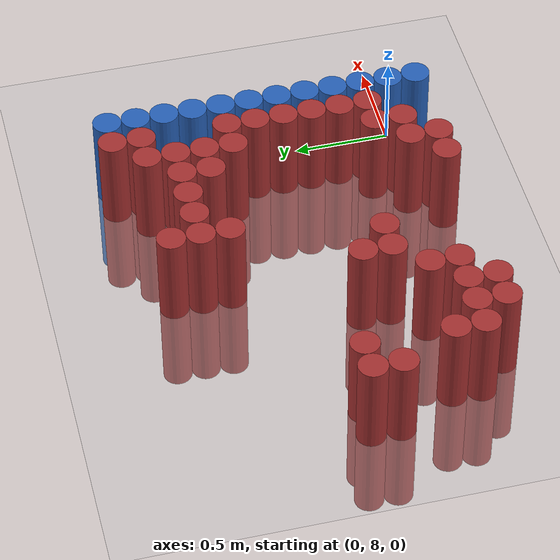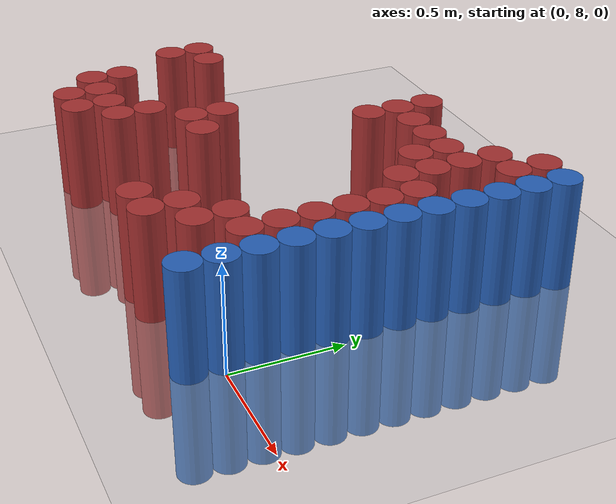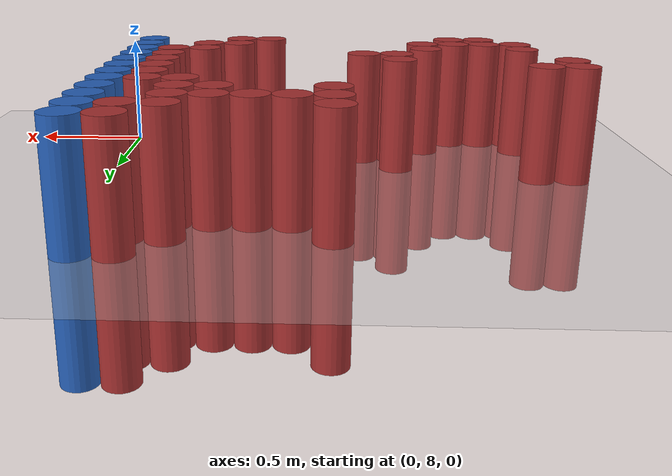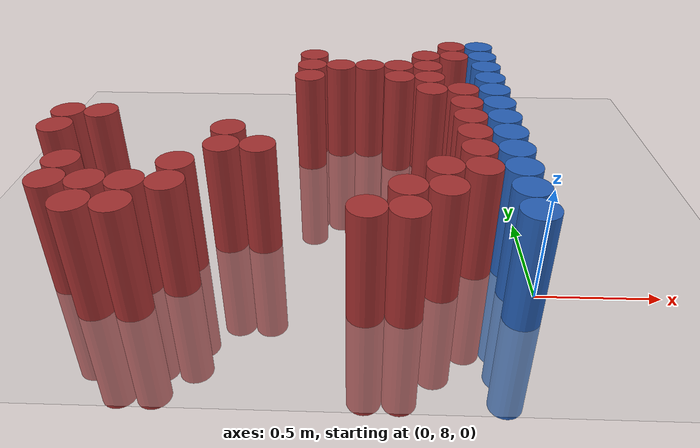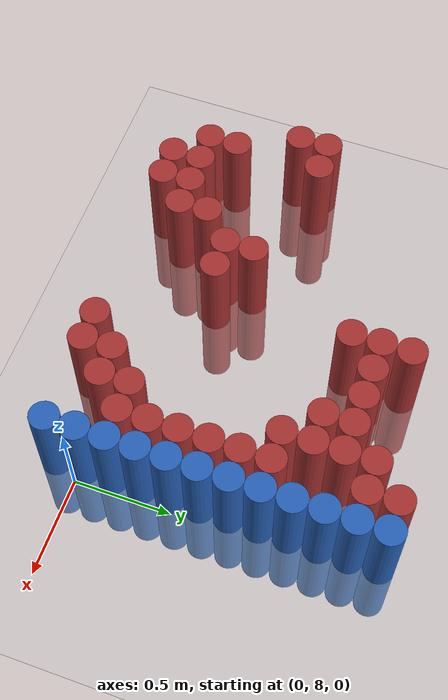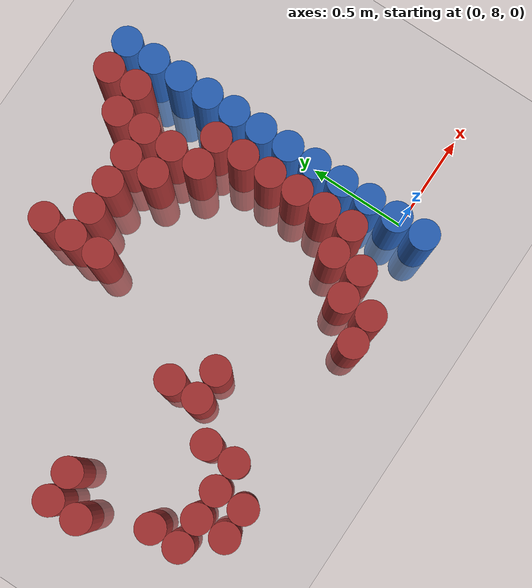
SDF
<sdf version="1.6">
 <world name="default">
  <model name="ground_plane">
   <static>1</static>
   <link name="link">
    <collision name="collision">
     <geometry><plane><normal>0 0 1</normal><size>100 100</size></plane></geometry>
     <surface><friction><ode><mu>100</mu><mu2>50</mu2></ode></friction></surface>
    </collision>
    <visual name="visual">
     <cast_shadows>0</cast_shadows>
     <geometry><plane><normal>0 0 1</normal><size>100 100</size></plane></geometry>
     <material>
      <script><uri>file://media/materials/scripts/gazebo.material</uri><name>Gazebo/Grey</name></script>
     </material>
    </visual>
   </link>
  </model>
  <model name="unit_cylinder_179">
   <static>1</static>
   <pose>-2.025000 8.475000 0.000000 0.000000 0.000000 0.000000</pose>
   <link name="link">
    <inertial>
     <mass>1</mass>
     <inertia><ixx>0.145833</ixx><ixy>0</ixy><ixz>0</ixz><iyy>0.145833</iyy><iyz>0</iyz><izz>0.125</izz></inertia>
    </inertial>
    <collision name="collision">
     <geometry><cylinder><radius>0.075000</radius><length>1</length></cylinder></geometry>
    </collision>
    <visual name="visual">
     <geometry><cylinder><radius>0.075000</radius><length>1</length></cylinder></geometry>
     <material>
      <ambient>0.648000 0.192000 0.192000 1</ambient>
      <diffuse>0.648000 0.192000 0.192000 1</diffuse>
     </material>
     <material>
      <script><name>Gazebo/Grey</name><uri>file://media/materials/scripts/gazebo.material</uri></script>
     </material>
    </visual>
   </link>
  </model>
  <model name="unit_cylinder_180">
   <static>1</static>
   <pose>-2.025000 8.625000 0.000000 0.000000 0.000000 0.000000</pose>
   <link name="link">
    <inertial>
     <mass>1</mass>
     <inertia><ixx>0.145833</ixx><ixy>0</ixy><ixz>0</ixz><iyy>0.145833</iyy><iyz>0</iyz><izz>0.125</izz></inertia>
    </inertial>
    <collision name="collision">
     <geometry><cylinder><radius>0.075000</radius><length>1</length></cylinder></geometry>
    </collision>
    <visual name="visual">
     <geometry><cylinder><radius>0.075000</radius><length>1</length></cylinder></geometry>
     <material>
      <ambient>0.648000 0.192000 0.192000 1</ambient>
      <diffuse>0.648000 0.192000 0.192000 1</diffuse>
     </material>
     <material>
      <script><name>Gazebo/Grey</name><uri>file://media/materials/scripts/gazebo.material</uri></script>
     </material>
    </visual>
   </link>
  </model>
  <model name="unit_cylinder_184">
   <static>1</static>
   <pose>-1.875000 8.025000 0.000000 0.000000 0.000000 0.000000</pose>
   <link name="link">
    <inertial>
     <mass>1</mass>
     <inertia><ixx>0.145833</ixx><ixy>0</ixy><ixz>0</ixz><iyy>0.145833</iyy><iyz>0</iyz><izz>0.125</izz></inertia>
    </inertial>
    <collision name="collision">
     <geometry><cylinder><radius>0.075000</radius><length>1</length></cylinder></geometry>
    </collision>
    <visual name="visual">
     <geometry><cylinder><radius>0.075000</radius><length>1</length></cylinder></geometry>
     <material>
      <ambient>0.648000 0.192000 0.192000 1</ambient>
      <diffuse>0.648000 0.192000 0.192000 1</diffuse>
     </material>
     <material>
      <script><name>Gazebo/Grey</name><uri>file://media/materials/scripts/gazebo.material</uri></script>
     </material>
    </visual>
   </link>
  </model>
  <model name="unit_cylinder_185">
   <static>1</static>
   <pose>-1.875000 8.175000 0.000000 0.000000 0.000000 0.000000</pose>
   <link name="link">
    <inertial>
     <mass>1</mass>
     <inertia><ixx>0.145833</ixx><ixy>0</ixy><ixz>0</ixz><iyy>0.145833</iyy><iyz>0</iyz><izz>0.125</izz></inertia>
    </inertial>
    <collision name="collision">
     <geometry><cylinder><radius>0.075000</radius><length>1</length></cylinder></geometry>
    </collision>
    <visual name="visual">
     <geometry><cylinder><radius>0.075000</radius><length>1</length></cylinder></geometry>
     <material>
      <ambient>0.648000 0.192000 0.192000 1</ambient>
      <diffuse>0.648000 0.192000 0.192000 1</diffuse>
     </material>
     <material>
      <script><name>Gazebo/Grey</name><uri>file://media/materials/scripts/gazebo.material</uri></script>
     </material>
    </visual>
   </link>
  </model>
  <model name="unit_cylinder_186">
   <static>1</static>
   <pose>-1.875000 8.625000 0.000000 0.000000 0.000000 0.000000</pose>
   <link name="link">
    <inertial>
     <mass>1</mass>
     <inertia><ixx>0.145833</ixx><ixy>0</ixy><ixz>0</ixz><iyy>0.145833</iyy><iyz>0</iyz><izz>0.125</izz></inertia>
    </inertial>
    <collision name="collision">
     <geometry><cylinder><radius>0.075000</radius><length>1</length></cylinder></geometry>
    </collision>
    <visual name="visual">
     <geometry><cylinder><radius>0.075000</radius><length>1</length></cylinder></geometry>
     <material>
      <ambient>0.648000 0.192000 0.192000 1</ambient>
      <diffuse>0.648000 0.192000 0.192000 1</diffuse>
     </material>
     <material>
      <script><name>Gazebo/Grey</name><uri>file://media/materials/scripts/gazebo.material</uri></script>
     </material>
    </visual>
   </link>
  </model>
  <model name="unit_cylinder_196">
   <static>1</static>
   <pose>-1.725000 7.875000 0.000000 0.000000 0.000000 0.000000</pose>
   <link name="link">
    <inertial>
     <mass>1</mass>
     <inertia><ixx>0.145833</ixx><ixy>0</ixy><ixz>0</ixz><iyy>0.145833</iyy><iyz>0</iyz><izz>0.125</izz></inertia>
    </inertial>
    <collision name="collision">
     <geometry><cylinder><radius>0.075000</radius><length>1</length></cylinder></geometry>
    </collision>
    <visual name="visual">
     <geometry><cylinder><radius>0.075000</radius><length>1</length></cylinder></geometry>
     <material>
      <ambient>0.648000 0.192000 0.192000 1</ambient>
      <diffuse>0.648000 0.192000 0.192000 1</diffuse>
     </material>
     <material>
      <script><name>Gazebo/Grey</name><uri>file://media/materials/scripts/gazebo.material</uri></script>
     </material>
    </visual>
   </link>
  </model>
  <model name="unit_cylinder_197">
   <static>1</static>
   <pose>-1.725000 8.025000 0.000000 0.000000 0.000000 0.000000</pose>
   <link name="link">
    <inertial>
     <mass>1</mass>
     <inertia><ixx>0.145833</ixx><ixy>0</ixy><ixz>0</ixz><iyy>0.145833</iyy><iyz>0</iyz><izz>0.125</izz></inertia>
    </inertial>
    <collision name="collision">
     <geometry><cylinder><radius>0.075000</radius><length>1</length></cylinder></geometry>
    </collision>
    <visual name="visual">
     <geometry><cylinder><radius>0.075000</radius><length>1</length></cylinder></geometry>
     <material>
      <ambient>0.648000 0.192000 0.192000 1</ambient>
      <diffuse>0.648000 0.192000 0.192000 1</diffuse>
     </material>
     <material>
      <script><name>Gazebo/Grey</name><uri>file://media/materials/scripts/gazebo.material</uri></script>
     </material>
    </visual>
   </link>
  </model>
  <model name="unit_cylinder_204">
   <static>1</static>
   <pose>-1.575000 7.875000 0.000000 0.000000 0.000000 0.000000</pose>
   <link name="link">
    <inertial>
     <mass>1</mass>
     <inertia><ixx>0.145833</ixx><ixy>0</ixy><ixz>0</ixz><iyy>0.145833</iyy><iyz>0</iyz><izz>0.125</izz></inertia>
    </inertial>
    <collision name="collision">
     <geometry><cylinder><radius>0.075000</radius><length>1</length></cylinder></geometry>
    </collision>
    <visual name="visual">
     <geometry><cylinder><radius>0.075000</radius><length>1</length></cylinder></geometry>
     <material>
      <ambient>0.648000 0.192000 0.192000 1</ambient>
      <diffuse>0.648000 0.192000 0.192000 1</diffuse>
     </material>
     <material>
      <script><name>Gazebo/Grey</name><uri>file://media/materials/scripts/gazebo.material</uri></script>
     </material>
    </visual>
   </link>
  </model>
  <model name="unit_cylinder_205">
   <static>1</static>
   <pose>-1.575000 8.025000 0.000000 0.000000 0.000000 0.000000</pose>
   <link name="link">
    <inertial>
     <mass>1</mass>
     <inertia><ixx>0.145833</ixx><ixy>0</ixy><ixz>0</ixz><iyy>0.145833</iyy><iyz>0</iyz><izz>0.125</izz></inertia>
    </inertial>
    <collision name="collision">
     <geometry><cylinder><radius>0.075000</radius><length>1</length></cylinder></geometry>
    </collision>
    <visual name="visual">
     <geometry><cylinder><radius>0.075000</radius><length>1</length></cylinder></geometry>
     <material>
      <ambient>0.648000 0.192000 0.192000 1</ambient>
      <diffuse>0.648000 0.192000 0.192000 1</diffuse>
     </material>
     <material>
      <script><name>Gazebo/Grey</name><uri>file://media/materials/scripts/gazebo.material</uri></script>
     </material>
    </visual>
   </link>
  </model>
  <model name="unit_cylinder_208">
   <static>1</static>
   <pose>-1.425000 8.025000 0.000000 0.000000 0.000000 0.000000</pose>
   <link name="link">
    <inertial>
     <mass>1</mass>
     <inertia><ixx>0.145833</ixx><ixy>0</ixy><ixz>0</ixz><iyy>0.145833</iyy><iyz>0</iyz><izz>0.125</izz></inertia>
    </inertial>
    <collision name="collision">
     <geometry><cylinder><radius>0.075000</radius><length>1</length></cylinder></geometry>
    </collision>
    <visual name="visual">
     <geometry><cylinder><radius>0.075000</radius><length>1</length></cylinder></geometry>
     <material>
      <ambient>0.648000 0.192000 0.192000 1</ambient>
      <diffuse>0.648000 0.192000 0.192000 1</diffuse>
     </material>
     <material>
      <script><name>Gazebo/Grey</name><uri>file://media/materials/scripts/gazebo.material</uri></script>
     </material>
    </visual>
   </link>
  </model>
  <model name="unit_cylinder_209">
   <static>1</static>
   <pose>-1.425000 8.175000 0.000000 0.000000 0.000000 0.000000</pose>
   <link name="link">
    <inertial>
     <mass>1</mass>
     <inertia><ixx>0.145833</ixx><ixy>0</ixy><ixz>0</ixz><iyy>0.145833</iyy><iyz>0</iyz><izz>0.125</izz></inertia>
    </inertial>
    <collision name="collision">
     <geometry><cylinder><radius>0.075000</radius><length>1</length></cylinder></geometry>
    </collision>
    <visual name="visual">
     <geometry><cylinder><radius>0.075000</radius><length>1</length></cylinder></geometry>
     <material>
      <ambient>0.648000 0.192000 0.192000 1</ambient>
      <diffuse>0.648000 0.192000 0.192000 1</diffuse>
     </material>
     <material>
      <script><name>Gazebo/Grey</name><uri>file://media/materials/scripts/gazebo.material</uri></script>
     </material>
    </visual>
   </link>
  </model>
  <model name="unit_cylinder_211">
   <static>1</static>
   <pose>-1.275000 8.325000 0.000000 0.000000 0.000000 0.000000</pose>
   <link name="link">
    <inertial>
     <mass>1</mass>
     <inertia><ixx>0.145833</ixx><ixy>0</ixy><ixz>0</ixz><iyy>0.145833</iyy><iyz>0</iyz><izz>0.125</izz></inertia>
    </inertial>
    <collision name="collision">
     <geometry><cylinder><radius>0.075000</radius><length>1</length></cylinder></geometry>
    </collision>
    <visual name="visual">
     <geometry><cylinder><radius>0.075000</radius><length>1</length></cylinder></geometry>
     <material>
      <ambient>0.648000 0.192000 0.192000 1</ambient>
      <diffuse>0.648000 0.192000 0.192000 1</diffuse>
     </material>
     <material>
      <script><name>Gazebo/Grey</name><uri>file://media/materials/scripts/gazebo.material</uri></script>
     </material>
    </visual>
   </link>
  </model>
  <model name="unit_cylinder_212">
   <static>1</static>
   <pose>-1.275000 8.475000 0.000000 0.000000 0.000000 0.000000</pose>
   <link name="link">
    <inertial>
     <mass>1</mass>
     <inertia><ixx>0.145833</ixx><ixy>0</ixy><ixz>0</ixz><iyy>0.145833</iyy><iyz>0</iyz><izz>0.125</izz></inertia>
    </inertial>
    <collision name="collision">
     <geometry><cylinder><radius>0.075000</radius><length>1</length></cylinder></geometry>
    </collision>
    <visual name="visual">
     <geometry><cylinder><radius>0.075000</radius><length>1</length></cylinder></geometry>
     <material>
      <ambient>0.648000 0.192000 0.192000 1</ambient>
      <diffuse>0.648000 0.192000 0.192000 1</diffuse>
     </material>
     <material>
      <script><name>Gazebo/Grey</name><uri>file://media/materials/scripts/gazebo.material</uri></script>
     </material>
    </visual>
   </link>
  </model>
  <model name="unit_cylinder_214">
   <static>1</static>
   <pose>-1.125000 8.325000 0.000000 0.000000 0.000000 0.000000</pose>
   <link name="link">
    <inertial>
     <mass>1</mass>
     <inertia><ixx>0.145833</ixx><ixy>0</ixy><ixz>0</ixz><iyy>0.145833</iyy><iyz>0</iyz><izz>0.125</izz></inertia>
    </inertial>
    <collision name="collision">
     <geometry><cylinder><radius>0.075000</radius><length>1</length></cylinder></geometry>
    </collision>
    <visual name="visual">
     <geometry><cylinder><radius>0.075000</radius><length>1</length></cylinder></geometry>
     <material>
      <ambient>0.648000 0.192000 0.192000 1</ambient>
      <diffuse>0.648000 0.192000 0.192000 1</diffuse>
     </material>
     <material>
      <script><name>Gazebo/Grey</name><uri>file://media/materials/scripts/gazebo.material</uri></script>
     </material>
    </visual>
   </link>
  </model>
  <model name="unit_cylinder_217">
   <static>1</static>
   <pose>-0.975000 9.075000 0.000000 0.000000 0.000000 0.000000</pose>
   <link name="link">
    <inertial>
     <mass>1</mass>
     <inertia><ixx>0.145833</ixx><ixy>0</ixy><ixz>0</ixz><iyy>0.145833</iyy><iyz>0</iyz><izz>0.125</izz></inertia>
    </inertial>
    <collision name="collision">
     <geometry><cylinder><radius>0.075000</radius><length>1</length></cylinder></geometry>
    </collision>
    <visual name="visual">
     <geometry><cylinder><radius>0.075000</radius><length>1</length></cylinder></geometry>
     <material>
      <ambient>0.648000 0.192000 0.192000 1</ambient>
      <diffuse>0.648000 0.192000 0.192000 1</diffuse>
     </material>
     <material>
      <script><name>Gazebo/Grey</name><uri>file://media/materials/scripts/gazebo.material</uri></script>
     </material>
    </visual>
   </link>
  </model>
  <model name="unit_cylinder_218">
   <static>1</static>
   <pose>-0.975000 9.225000 0.000000 0.000000 0.000000 0.000000</pose>
   <link name="link">
    <inertial>
     <mass>1</mass>
     <inertia><ixx>0.145833</ixx><ixy>0</ixy><ixz>0</ixz><iyy>0.145833</iyy><iyz>0</iyz><izz>0.125</izz></inertia>
    </inertial>
    <collision name="collision">
     <geometry><cylinder><radius>0.075000</radius><length>1</length></cylinder></geometry>
    </collision>
    <visual name="visual">
     <geometry><cylinder><radius>0.075000</radius><length>1</length></cylinder></geometry>
     <material>
      <ambient>0.648000 0.192000 0.192000 1</ambient>
      <diffuse>0.648000 0.192000 0.192000 1</diffuse>
     </material>
     <material>
      <script><name>Gazebo/Grey</name><uri>file://media/materials/scripts/gazebo.material</uri></script>
     </material>
    </visual>
   </link>
  </model>
  <model name="unit_cylinder_219">
   <static>1</static>
   <pose>-0.975000 9.375000 0.000000 0.000000 0.000000 0.000000</pose>
   <link name="link">
    <inertial>
     <mass>1</mass>
     <inertia><ixx>0.145833</ixx><ixy>0</ixy><ixz>0</ixz><iyy>0.145833</iyy><iyz>0</iyz><izz>0.125</izz></inertia>
    </inertial>
    <collision name="collision">
     <geometry><cylinder><radius>0.075000</radius><length>1</length></cylinder></geometry>
    </collision>
    <visual name="visual">
     <geometry><cylinder><radius>0.075000</radius><length>1</length></cylinder></geometry>
     <material>
      <ambient>0.648000 0.192000 0.192000 1</ambient>
      <diffuse>0.648000 0.192000 0.192000 1</diffuse>
     </material>
     <material>
      <script><name>Gazebo/Grey</name><uri>file://media/materials/scripts/gazebo.material</uri></script>
     </material>
    </visual>
   </link>
  </model>
  <model name="unit_cylinder_220">
   <static>1</static>
   <pose>-0.825000 9.225000 0.000000 0.000000 0.000000 0.000000</pose>
   <link name="link">
    <inertial>
     <mass>1</mass>
     <inertia><ixx>0.145833</ixx><ixy>0</ixy><ixz>0</ixz><iyy>0.145833</iyy><iyz>0</iyz><izz>0.125</izz></inertia>
    </inertial>
    <collision name="collision">
     <geometry><cylinder><radius>0.075000</radius><length>1</length></cylinder></geometry>
    </collision>
    <visual name="visual">
     <geometry><cylinder><radius>0.075000</radius><length>1</length></cylinder></geometry>
     <material>
      <ambient>0.648000 0.192000 0.192000 1</ambient>
      <diffuse>0.648000 0.192000 0.192000 1</diffuse>
     </material>
     <material>
      <script><name>Gazebo/Grey</name><uri>file://media/materials/scripts/gazebo.material</uri></script>
     </material>
    </visual>
   </link>
  </model>
  <model name="unit_cylinder_221">
   <static>1</static>
   <pose>-0.675000 7.875000 0.000000 0.000000 0.000000 0.000000</pose>
   <link name="link">
    <inertial>
     <mass>1</mass>
     <inertia><ixx>0.145833</ixx><ixy>0</ixy><ixz>0</ixz><iyy>0.145833</iyy><iyz>0</iyz><izz>0.125</izz></inertia>
    </inertial>
    <collision name="collision">
     <geometry><cylinder><radius>0.075000</radius><length>1</length></cylinder></geometry>
    </collision>
    <visual name="visual">
     <geometry><cylinder><radius>0.075000</radius><length>1</length></cylinder></geometry>
     <material>
      <ambient>0.648000 0.192000 0.192000 1</ambient>
      <diffuse>0.648000 0.192000 0.192000 1</diffuse>
     </material>
     <material>
      <script><name>Gazebo/Grey</name><uri>file://media/materials/scripts/gazebo.material</uri></script>
     </material>
    </visual>
   </link>
  </model>
  <model name="unit_cylinder_222">
   <static>1</static>
   <pose>-0.675000 9.225000 0.000000 0.000000 0.000000 0.000000</pose>
   <link name="link">
    <inertial>
     <mass>1</mass>
     <inertia><ixx>0.145833</ixx><ixy>0</ixy><ixz>0</ixz><iyy>0.145833</iyy><iyz>0</iyz><izz>0.125</izz></inertia>
    </inertial>
    <collision name="collision">
     <geometry><cylinder><radius>0.075000</radius><length>1</length></cylinder></geometry>
    </collision>
    <visual name="visual">
     <geometry><cylinder><radius>0.075000</radius><length>1</length></cylinder></geometry>
     <material>
      <ambient>0.648000 0.192000 0.192000 1</ambient>
      <diffuse>0.648000 0.192000 0.192000 1</diffuse>
     </material>
     <material>
      <script><name>Gazebo/Grey</name><uri>file://media/materials/scripts/gazebo.material</uri></script>
     </material>
    </visual>
   </link>
  </model>
  <model name="unit_cylinder_228">
   <static>1</static>
   <pose>-0.525000 7.875000 0.000000 0.000000 0.000000 0.000000</pose>
   <link name="link">
    <inertial>
     <mass>1</mass>
     <inertia><ixx>0.145833</ixx><ixy>0</ixy><ixz>0</ixz><iyy>0.145833</iyy><iyz>0</iyz><izz>0.125</izz></inertia>
    </inertial>
    <collision name="collision">
     <geometry><cylinder><radius>0.075000</radius><length>1</length></cylinder></geometry>
    </collision>
    <visual name="visual">
     <geometry><cylinder><radius>0.075000</radius><length>1</length></cylinder></geometry>
     <material>
      <ambient>0.648000 0.192000 0.192000 1</ambient>
      <diffuse>0.648000 0.192000 0.192000 1</diffuse>
     </material>
     <material>
      <script><name>Gazebo/Grey</name><uri>file://media/materials/scripts/gazebo.material</uri></script>
     </material>
    </visual>
   </link>
  </model>
  <model name="unit_cylinder_229">
   <static>1</static>
   <pose>-0.525000 8.025000 0.000000 0.000000 0.000000 0.000000</pose>
   <link name="link">
    <inertial>
     <mass>1</mass>
     <inertia><ixx>0.145833</ixx><ixy>0</ixy><ixz>0</ixz><iyy>0.145833</iyy><iyz>0</iyz><izz>0.125</izz></inertia>
    </inertial>
    <collision name="collision">
     <geometry><cylinder><radius>0.075000</radius><length>1</length></cylinder></geometry>
    </collision>
    <visual name="visual">
     <geometry><cylinder><radius>0.075000</radius><length>1</length></cylinder></geometry>
     <material>
      <ambient>0.648000 0.192000 0.192000 1</ambient>
      <diffuse>0.648000 0.192000 0.192000 1</diffuse>
     </material>
     <material>
      <script><name>Gazebo/Grey</name><uri>file://media/materials/scripts/gazebo.material</uri></script>
     </material>
    </visual>
   </link>
  </model>
  <model name="unit_cylinder_230">
   <static>1</static>
   <pose>-0.525000 9.075000 0.000000 0.000000 0.000000 0.000000</pose>
   <link name="link">
    <inertial>
     <mass>1</mass>
     <inertia><ixx>0.145833</ixx><ixy>0</ixy><ixz>0</ixz><iyy>0.145833</iyy><iyz>0</iyz><izz>0.125</izz></inertia>
    </inertial>
    <collision name="collision">
     <geometry><cylinder><radius>0.075000</radius><length>1</length></cylinder></geometry>
    </collision>
    <visual name="visual">
     <geometry><cylinder><radius>0.075000</radius><length>1</length></cylinder></geometry>
     <material>
      <ambient>0.648000 0.192000 0.192000 1</ambient>
      <diffuse>0.648000 0.192000 0.192000 1</diffuse>
     </material>
     <material>
      <script><name>Gazebo/Grey</name><uri>file://media/materials/scripts/gazebo.material</uri></script>
     </material>
    </visual>
   </link>
  </model>
  <model name="unit_cylinder_231">
   <static>1</static>
   <pose>-0.525000 9.225000 0.000000 0.000000 0.000000 0.000000</pose>
   <link name="link">
    <inertial>
     <mass>1</mass>
     <inertia><ixx>0.145833</ixx><ixy>0</ixy><ixz>0</ixz><iyy>0.145833</iyy><iyz>0</iyz><izz>0.125</izz></inertia>
    </inertial>
    <collision name="collision">
     <geometry><cylinder><radius>0.075000</radius><length>1</length></cylinder></geometry>
    </collision>
    <visual name="visual">
     <geometry><cylinder><radius>0.075000</radius><length>1</length></cylinder></geometry>
     <material>
      <ambient>0.648000 0.192000 0.192000 1</ambient>
      <diffuse>0.648000 0.192000 0.192000 1</diffuse>
     </material>
     <material>
      <script><name>Gazebo/Grey</name><uri>file://media/materials/scripts/gazebo.material</uri></script>
     </material>
    </visual>
   </link>
  </model>
  <model name="unit_cylinder_242">
   <static>1</static>
   <pose>-0.375000 8.025000 0.000000 0.000000 0.000000 0.000000</pose>
   <link name="link">
    <inertial>
     <mass>1</mass>
     <inertia><ixx>0.145833</ixx><ixy>0</ixy><ixz>0</ixz><iyy>0.145833</iyy><iyz>0</iyz><izz>0.125</izz></inertia>
    </inertial>
    <collision name="collision">
     <geometry><cylinder><radius>0.075000</radius><length>1</length></cylinder></geometry>
    </collision>
    <visual name="visual">
     <geometry><cylinder><radius>0.075000</radius><length>1</length></cylinder></geometry>
     <material>
      <ambient>0.648000 0.192000 0.192000 1</ambient>
      <diffuse>0.648000 0.192000 0.192000 1</diffuse>
     </material>
     <material>
      <script><name>Gazebo/Grey</name><uri>file://media/materials/scripts/gazebo.material</uri></script>
     </material>
    </visual>
   </link>
  </model>
  <model name="unit_cylinder_243">
   <static>1</static>
   <pose>-0.375000 8.175000 0.000000 0.000000 0.000000 0.000000</pose>
   <link name="link">
    <inertial>
     <mass>1</mass>
     <inertia><ixx>0.145833</ixx><ixy>0</ixy><ixz>0</ixz><iyy>0.145833</iyy><iyz>0</iyz><izz>0.125</izz></inertia>
    </inertial>
    <collision name="collision">
     <geometry><cylinder><radius>0.075000</radius><length>1</length></cylinder></geometry>
    </collision>
    <visual name="visual">
     <geometry><cylinder><radius>0.075000</radius><length>1</length></cylinder></geometry>
     <material>
      <ambient>0.648000 0.192000 0.192000 1</ambient>
      <diffuse>0.648000 0.192000 0.192000 1</diffuse>
     </material>
     <material>
      <script><name>Gazebo/Grey</name><uri>file://media/materials/scripts/gazebo.material</uri></script>
     </material>
    </visual>
   </link>
  </model>
  <model name="unit_cylinder_244">
   <static>1</static>
   <pose>-0.375000 8.925000 0.000000 0.000000 0.000000 0.000000</pose>
   <link name="link">
    <inertial>
     <mass>1</mass>
     <inertia><ixx>0.145833</ixx><ixy>0</ixy><ixz>0</ixz><iyy>0.145833</iyy><iyz>0</iyz><izz>0.125</izz></inertia>
    </inertial>
    <collision name="collision">
     <geometry><cylinder><radius>0.075000</radius><length>1</length></cylinder></geometry>
    </collision>
    <visual name="visual">
     <geometry><cylinder><radius>0.075000</radius><length>1</length></cylinder></geometry>
     <material>
      <ambient>0.648000 0.192000 0.192000 1</ambient>
      <diffuse>0.648000 0.192000 0.192000 1</diffuse>
     </material>
     <material>
      <script><name>Gazebo/Grey</name><uri>file://media/materials/scripts/gazebo.material</uri></script>
     </material>
    </visual>
   </link>
  </model>
  <model name="unit_cylinder_245">
   <static>1</static>
   <pose>-0.375000 9.075000 0.000000 0.000000 0.000000 0.000000</pose>
   <link name="link">
    <inertial>
     <mass>1</mass>
     <inertia><ixx>0.145833</ixx><ixy>0</ixy><ixz>0</ixz><iyy>0.145833</iyy><iyz>0</iyz><izz>0.125</izz></inertia>
    </inertial>
    <collision name="collision">
     <geometry><cylinder><radius>0.075000</radius><length>1</length></cylinder></geometry>
    </collision>
    <visual name="visual">
     <geometry><cylinder><radius>0.075000</radius><length>1</length></cylinder></geometry>
     <material>
      <ambient>0.648000 0.192000 0.192000 1</ambient>
      <diffuse>0.648000 0.192000 0.192000 1</diffuse>
     </material>
     <material>
      <script><name>Gazebo/Grey</name><uri>file://media/materials/scripts/gazebo.material</uri></script>
     </material>
    </visual>
   </link>
  </model>
  <model name="unit_cylinder_246">
   <static>1</static>
   <pose>-0.375000 9.225000 0.000000 0.000000 0.000000 0.000000</pose>
   <link name="link">
    <inertial>
     <mass>1</mass>
     <inertia><ixx>0.145833</ixx><ixy>0</ixy><ixz>0</ixz><iyy>0.145833</iyy><iyz>0</iyz><izz>0.125</izz></inertia>
    </inertial>
    <collision name="collision">
     <geometry><cylinder><radius>0.075000</radius><length>1</length></cylinder></geometry>
    </collision>
    <visual name="visual">
     <geometry><cylinder><radius>0.075000</radius><length>1</length></cylinder></geometry>
     <material>
      <ambient>0.648000 0.192000 0.192000 1</ambient>
      <diffuse>0.648000 0.192000 0.192000 1</diffuse>
     </material>
     <material>
      <script><name>Gazebo/Grey</name><uri>file://media/materials/scripts/gazebo.material</uri></script>
     </material>
    </visual>
   </link>
  </model>
  <model name="unit_cylinder_247">
   <static>1</static>
   <pose>-0.375000 9.375000 0.000000 0.000000 0.000000 0.000000</pose>
   <link name="link">
    <inertial>
     <mass>1</mass>
     <inertia><ixx>0.145833</ixx><ixy>0</ixy><ixz>0</ixz><iyy>0.145833</iyy><iyz>0</iyz><izz>0.125</izz></inertia>
    </inertial>
    <collision name="collision">
     <geometry><cylinder><radius>0.075000</radius><length>1</length></cylinder></geometry>
    </collision>
    <visual name="visual">
     <geometry><cylinder><radius>0.075000</radius><length>1</length></cylinder></geometry>
     <material>
      <ambient>0.648000 0.192000 0.192000 1</ambient>
      <diffuse>0.648000 0.192000 0.192000 1</diffuse>
     </material>
     <material>
      <script><name>Gazebo/Grey</name><uri>file://media/materials/scripts/gazebo.material</uri></script>
     </material>
    </visual>
   </link>
  </model>
  <model name="unit_cylinder_257">
   <static>1</static>
   <pose>-0.225000 8.175000 0.000000 0.000000 0.000000 0.000000</pose>
   <link name="link">
    <inertial>
     <mass>1</mass>
     <inertia><ixx>0.145833</ixx><ixy>0</ixy><ixz>0</ixz><iyy>0.145833</iyy><iyz>0</iyz><izz>0.125</izz></inertia>
    </inertial>
    <collision name="collision">
     <geometry><cylinder><radius>0.075000</radius><length>1</length></cylinder></geometry>
    </collision>
    <visual name="visual">
     <geometry><cylinder><radius>0.075000</radius><length>1</length></cylinder></geometry>
     <material>
      <ambient>0.648000 0.192000 0.192000 1</ambient>
      <diffuse>0.648000 0.192000 0.192000 1</diffuse>
     </material>
     <material>
      <script><name>Gazebo/Grey</name><uri>file://media/materials/scripts/gazebo.material</uri></script>
     </material>
    </visual>
   </link>
  </model>
  <model name="unit_cylinder_258">
   <static>1</static>
   <pose>-0.225000 8.325000 0.000000 0.000000 0.000000 0.000000</pose>
   <link name="link">
    <inertial>
     <mass>1</mass>
     <inertia><ixx>0.145833</ixx><ixy>0</ixy><ixz>0</ixz><iyy>0.145833</iyy><iyz>0</iyz><izz>0.125</izz></inertia>
    </inertial>
    <collision name="collision">
     <geometry><cylinder><radius>0.075000</radius><length>1</length></cylinder></geometry>
    </collision>
    <visual name="visual">
     <geometry><cylinder><radius>0.075000</radius><length>1</length></cylinder></geometry>
     <material>
      <ambient>0.648000 0.192000 0.192000 1</ambient>
      <diffuse>0.648000 0.192000 0.192000 1</diffuse>
     </material>
     <material>
      <script><name>Gazebo/Grey</name><uri>file://media/materials/scripts/gazebo.material</uri></script>
     </material>
    </visual>
   </link>
  </model>
  <model name="unit_cylinder_259">
   <static>1</static>
   <pose>-0.225000 8.475000 0.000000 0.000000 0.000000 0.000000</pose>
   <link name="link">
    <inertial>
     <mass>1</mass>
     <inertia><ixx>0.145833</ixx><ixy>0</ixy><ixz>0</ixz><iyy>0.145833</iyy><iyz>0</iyz><izz>0.125</izz></inertia>
    </inertial>
    <collision name="collision">
     <geometry><cylinder><radius>0.075000</radius><length>1</length></cylinder></geometry>
    </collision>
    <visual name="visual">
     <geometry><cylinder><radius>0.075000</radius><length>1</length></cylinder></geometry>
     <material>
      <ambient>0.648000 0.192000 0.192000 1</ambient>
      <diffuse>0.648000 0.192000 0.192000 1</diffuse>
     </material>
     <material>
      <script><name>Gazebo/Grey</name><uri>file://media/materials/scripts/gazebo.material</uri></script>
     </material>
    </visual>
   </link>
  </model>
  <model name="unit_cylinder_260">
   <static>1</static>
   <pose>-0.225000 8.625000 0.000000 0.000000 0.000000 0.000000</pose>
   <link name="link">
    <inertial>
     <mass>1</mass>
     <inertia><ixx>0.145833</ixx><ixy>0</ixy><ixz>0</ixz><iyy>0.145833</iyy><iyz>0</iyz><izz>0.125</izz></inertia>
    </inertial>
    <collision name="collision">
     <geometry><cylinder><radius>0.075000</radius><length>1</length></cylinder></geometry>
    </collision>
    <visual name="visual">
     <geometry><cylinder><radius>0.075000</radius><length>1</length></cylinder></geometry>
     <material>
      <ambient>0.648000 0.192000 0.192000 1</ambient>
      <diffuse>0.648000 0.192000 0.192000 1</diffuse>
     </material>
     <material>
      <script><name>Gazebo/Grey</name><uri>file://media/materials/scripts/gazebo.material</uri></script>
     </material>
    </visual>
   </link>
  </model>
  <model name="unit_cylinder_261">
   <static>1</static>
   <pose>-0.225000 8.775000 0.000000 0.000000 0.000000 0.000000</pose>
   <link name="link">
    <inertial>
     <mass>1</mass>
     <inertia><ixx>0.145833</ixx><ixy>0</ixy><ixz>0</ixz><iyy>0.145833</iyy><iyz>0</iyz><izz>0.125</izz></inertia>
    </inertial>
    <collision name="collision">
     <geometry><cylinder><radius>0.075000</radius><length>1</length></cylinder></geometry>
    </collision>
    <visual name="visual">
     <geometry><cylinder><radius>0.075000</radius><length>1</length></cylinder></geometry>
     <material>
      <ambient>0.648000 0.192000 0.192000 1</ambient>
      <diffuse>0.648000 0.192000 0.192000 1</diffuse>
     </material>
     <material>
      <script><name>Gazebo/Grey</name><uri>file://media/materials/scripts/gazebo.material</uri></script>
     </material>
    </visual>
   </link>
  </model>
  <model name="unit_cylinder_262">
   <static>1</static>
   <pose>-0.225000 8.925000 0.000000 0.000000 0.000000 0.000000</pose>
   <link name="link">
    <inertial>
     <mass>1</mass>
     <inertia><ixx>0.145833</ixx><ixy>0</ixy><ixz>0</ixz><iyy>0.145833</iyy><iyz>0</iyz><izz>0.125</izz></inertia>
    </inertial>
    <collision name="collision">
     <geometry><cylinder><radius>0.075000</radius><length>1</length></cylinder></geometry>
    </collision>
    <visual name="visual">
     <geometry><cylinder><radius>0.075000</radius><length>1</length></cylinder></geometry>
     <material>
      <ambient>0.648000 0.192000 0.192000 1</ambient>
      <diffuse>0.648000 0.192000 0.192000 1</diffuse>
     </material>
     <material>
      <script><name>Gazebo/Grey</name><uri>file://media/materials/scripts/gazebo.material</uri></script>
     </material>
    </visual>
   </link>
  </model>
  <model name="unit_cylinder_263">
   <static>1</static>
   <pose>-0.225000 9.375000 0.000000 0.000000 0.000000 0.000000</pose>
   <link name="link">
    <inertial>
     <mass>1</mass>
     <inertia><ixx>0.145833</ixx><ixy>0</ixy><ixz>0</ixz><iyy>0.145833</iyy><iyz>0</iyz><izz>0.125</izz></inertia>
    </inertial>
    <collision name="collision">
     <geometry><cylinder><radius>0.075000</radius><length>1</length></cylinder></geometry>
    </collision>
    <visual name="visual">
     <geometry><cylinder><radius>0.075000</radius><length>1</length></cylinder></geometry>
     <material>
      <ambient>0.648000 0.192000 0.192000 1</ambient>
      <diffuse>0.648000 0.192000 0.192000 1</diffuse>
     </material>
     <material>
      <script><name>Gazebo/Grey</name><uri>file://media/materials/scripts/gazebo.material</uri></script>
     </material>
    </visual>
   </link>
  </model>
  <model name="unit_cylinder_264">
   <static>1</static>
   <pose>-0.225000 9.525000 0.000000 0.000000 0.000000 0.000000</pose>
   <link name="link">
    <inertial>
     <mass>1</mass>
     <inertia><ixx>0.145833</ixx><ixy>0</ixy><ixz>0</ixz><iyy>0.145833</iyy><iyz>0</iyz><izz>0.125</izz></inertia>
    </inertial>
    <collision name="collision">
     <geometry><cylinder><radius>0.075000</radius><length>1</length></cylinder></geometry>
    </collision>
    <visual name="visual">
     <geometry><cylinder><radius>0.075000</radius><length>1</length></cylinder></geometry>
     <material>
      <ambient>0.648000 0.192000 0.192000 1</ambient>
      <diffuse>0.648000 0.192000 0.192000 1</diffuse>
     </material>
     <material>
      <script><name>Gazebo/Grey</name><uri>file://media/materials/scripts/gazebo.material</uri></script>
     </material>
    </visual>
   </link>
  </model>
  <model name="unit_cylinder_283">
   <static>1</static>
   <pose>-0.075000 7.875000 0.000000 0.000000 0.000000 0.000000</pose>
   <link name="link">
    <inertial>
     <mass>1</mass>
     <inertia><ixx>0.145833</ixx><ixy>0</ixy><ixz>0</ixz><iyy>0.145833</iyy><iyz>0</iyz><izz>0.125</izz></inertia>
    </inertial>
    <collision name="collision">
     <geometry><cylinder><radius>0.075000</radius><length>1</length></cylinder></geometry>
    </collision>
    <visual name="visual">
     <geometry><cylinder><radius>0.075000</radius><length>1</length></cylinder></geometry>
     <material>
      <ambient>0.152000 0.379000 0.720000 1</ambient>
      <diffuse>0.152000 0.379000 0.720000 1</diffuse>
     </material>
     <material>
      <script><name>Gazebo/Grey</name><uri>file://media/materials/scripts/gazebo.material</uri></script>
     </material>
    </visual>
   </link>
  </model>
  <model name="unit_cylinder_284">
   <static>1</static>
   <pose>-0.075000 8.025000 0.000000 0.000000 0.000000 0.000000</pose>
   <link name="link">
    <inertial>
     <mass>1</mass>
     <inertia><ixx>0.145833</ixx><ixy>0</ixy><ixz>0</ixz><iyy>0.145833</iyy><iyz>0</iyz><izz>0.125</izz></inertia>
    </inertial>
    <collision name="collision">
     <geometry><cylinder><radius>0.075000</radius><length>1</length></cylinder></geometry>
    </collision>
    <visual name="visual">
     <geometry><cylinder><radius>0.075000</radius><length>1</length></cylinder></geometry>
     <material>
      <ambient>0.152000 0.379000 0.720000 1</ambient>
      <diffuse>0.152000 0.379000 0.720000 1</diffuse>
     </material>
     <material>
      <script><name>Gazebo/Grey</name><uri>file://media/materials/scripts/gazebo.material</uri></script>
     </material>
    </visual>
   </link>
  </model>
  <model name="unit_cylinder_285">
   <static>1</static>
   <pose>-0.075000 8.175000 0.000000 0.000000 0.000000 0.000000</pose>
   <link name="link">
    <inertial>
     <mass>1</mass>
     <inertia><ixx>0.145833</ixx><ixy>0</ixy><ixz>0</ixz><iyy>0.145833</iyy><iyz>0</iyz><izz>0.125</izz></inertia>
    </inertial>
    <collision name="collision">
     <geometry><cylinder><radius>0.075000</radius><length>1</length></cylinder></geometry>
    </collision>
    <visual name="visual">
     <geometry><cylinder><radius>0.075000</radius><length>1</length></cylinder></geometry>
     <material>
      <ambient>0.152000 0.379000 0.720000 1</ambient>
      <diffuse>0.152000 0.379000 0.720000 1</diffuse>
     </material>
     <material>
      <script><name>Gazebo/Grey</name><uri>file://media/materials/scripts/gazebo.material</uri></script>
     </material>
    </visual>
   </link>
  </model>
  <model name="unit_cylinder_286">
   <static>1</static>
   <pose>-0.075000 8.325000 0.000000 0.000000 0.000000 0.000000</pose>
   <link name="link">
    <inertial>
     <mass>1</mass>
     <inertia><ixx>0.145833</ixx><ixy>0</ixy><ixz>0</ixz><iyy>0.145833</iyy><iyz>0</iyz><izz>0.125</izz></inertia>
    </inertial>
    <collision name="collision">
     <geometry><cylinder><radius>0.075000</radius><length>1</length></cylinder></geometry>
    </collision>
    <visual name="visual">
     <geometry><cylinder><radius>0.075000</radius><length>1</length></cylinder></geometry>
     <material>
      <ambient>0.152000 0.379000 0.720000 1</ambient>
      <diffuse>0.152000 0.379000 0.720000 1</diffuse>
     </material>
     <material>
      <script><name>Gazebo/Grey</name><uri>file://media/materials/scripts/gazebo.material</uri></script>
     </material>
    </visual>
   </link>
  </model>
  <model name="unit_cylinder_287">
   <static>1</static>
   <pose>-0.075000 8.475000 0.000000 0.000000 0.000000 0.000000</pose>
   <link name="link">
    <inertial>
     <mass>1</mass>
     <inertia><ixx>0.145833</ixx><ixy>0</ixy><ixz>0</ixz><iyy>0.145833</iyy><iyz>0</iyz><izz>0.125</izz></inertia>
    </inertial>
    <collision name="collision">
     <geometry><cylinder><radius>0.075000</radius><length>1</length></cylinder></geometry>
    </collision>
    <visual name="visual">
     <geometry><cylinder><radius>0.075000</radius><length>1</length></cylinder></geometry>
     <material>
      <ambient>0.152000 0.379000 0.720000 1</ambient>
      <diffuse>0.152000 0.379000 0.720000 1</diffuse>
     </material>
     <material>
      <script><name>Gazebo/Grey</name><uri>file://media/materials/scripts/gazebo.material</uri></script>
     </material>
    </visual>
   </link>
  </model>
  <model name="unit_cylinder_288">
   <static>1</static>
   <pose>-0.075000 8.625000 0.000000 0.000000 0.000000 0.000000</pose>
   <link name="link">
    <inertial>
     <mass>1</mass>
     <inertia><ixx>0.145833</ixx><ixy>0</ixy><ixz>0</ixz><iyy>0.145833</iyy><iyz>0</iyz><izz>0.125</izz></inertia>
    </inertial>
    <collision name="collision">
     <geometry><cylinder><radius>0.075000</radius><length>1</length></cylinder></geometry>
    </collision>
    <visual name="visual">
     <geometry><cylinder><radius>0.075000</radius><length>1</length></cylinder></geometry>
     <material>
      <ambient>0.152000 0.379000 0.720000 1</ambient>
      <diffuse>0.152000 0.379000 0.720000 1</diffuse>
     </material>
     <material>
      <script><name>Gazebo/Grey</name><uri>file://media/materials/scripts/gazebo.material</uri></script>
     </material>
    </visual>
   </link>
  </model>
  <model name="unit_cylinder_289">
   <static>1</static>
   <pose>-0.075000 8.775000 0.000000 0.000000 0.000000 0.000000</pose>
   <link name="link">
    <inertial>
     <mass>1</mass>
     <inertia><ixx>0.145833</ixx><ixy>0</ixy><ixz>0</ixz><iyy>0.145833</iyy><iyz>0</iyz><izz>0.125</izz></inertia>
    </inertial>
    <collision name="collision">
     <geometry><cylinder><radius>0.075000</radius><length>1</length></cylinder></geometry>
    </collision>
    <visual name="visual">
     <geometry><cylinder><radius>0.075000</radius><length>1</length></cylinder></geometry>
     <material>
      <ambient>0.152000 0.379000 0.720000 1</ambient>
      <diffuse>0.152000 0.379000 0.720000 1</diffuse>
     </material>
     <material>
      <script><name>Gazebo/Grey</name><uri>file://media/materials/scripts/gazebo.material</uri></script>
     </material>
    </visual>
   </link>
  </model>
  <model name="unit_cylinder_290">
   <static>1</static>
   <pose>-0.075000 8.925000 0.000000 0.000000 0.000000 0.000000</pose>
   <link name="link">
    <inertial>
     <mass>1</mass>
     <inertia><ixx>0.145833</ixx><ixy>0</ixy><ixz>0</ixz><iyy>0.145833</iyy><iyz>0</iyz><izz>0.125</izz></inertia>
    </inertial>
    <collision name="collision">
     <geometry><cylinder><radius>0.075000</radius><length>1</length></cylinder></geometry>
    </collision>
    <visual name="visual">
     <geometry><cylinder><radius>0.075000</radius><length>1</length></cylinder></geometry>
     <material>
      <ambient>0.152000 0.379000 0.720000 1</ambient>
      <diffuse>0.152000 0.379000 0.720000 1</diffuse>
     </material>
     <material>
      <script><name>Gazebo/Grey</name><uri>file://media/materials/scripts/gazebo.material</uri></script>
     </material>
    </visual>
   </link>
  </model>
  <model name="unit_cylinder_291">
   <static>1</static>
   <pose>-0.075000 9.075000 0.000000 0.000000 0.000000 0.000000</pose>
   <link name="link">
    <inertial>
     <mass>1</mass>
     <inertia><ixx>0.145833</ixx><ixy>0</ixy><ixz>0</ixz><iyy>0.145833</iyy><iyz>0</iyz><izz>0.125</izz></inertia>
    </inertial>
    <collision name="collision">
     <geometry><cylinder><radius>0.075000</radius><length>1</length></cylinder></geometry>
    </collision>
    <visual name="visual">
     <geometry><cylinder><radius>0.075000</radius><length>1</length></cylinder></geometry>
     <material>
      <ambient>0.152000 0.379000 0.720000 1</ambient>
      <diffuse>0.152000 0.379000 0.720000 1</diffuse>
     </material>
     <material>
      <script><name>Gazebo/Grey</name><uri>file://media/materials/scripts/gazebo.material</uri></script>
     </material>
    </visual>
   </link>
  </model>
  <model name="unit_cylinder_292">
   <static>1</static>
   <pose>-0.075000 9.225000 0.000000 0.000000 0.000000 0.000000</pose>
   <link name="link">
    <inertial>
     <mass>1</mass>
     <inertia><ixx>0.145833</ixx><ixy>0</ixy><ixz>0</ixz><iyy>0.145833</iyy><iyz>0</iyz><izz>0.125</izz></inertia>
    </inertial>
    <collision name="collision">
     <geometry><cylinder><radius>0.075000</radius><length>1</length></cylinder></geometry>
    </collision>
    <visual name="visual">
     <geometry><cylinder><radius>0.075000</radius><length>1</length></cylinder></geometry>
     <material>
      <ambient>0.152000 0.379000 0.720000 1</ambient>
      <diffuse>0.152000 0.379000 0.720000 1</diffuse>
     </material>
     <material>
      <script><name>Gazebo/Grey</name><uri>file://media/materials/scripts/gazebo.material</uri></script>
     </material>
    </visual>
   </link>
  </model>
  <model name="unit_cylinder_293">
   <static>1</static>
   <pose>-0.075000 9.375000 0.000000 0.000000 0.000000 0.000000</pose>
   <link name="link">
    <inertial>
     <mass>1</mass>
     <inertia><ixx>0.145833</ixx><ixy>0</ixy><ixz>0</ixz><iyy>0.145833</iyy><iyz>0</iyz><izz>0.125</izz></inertia>
    </inertial>
    <collision name="collision">
     <geometry><cylinder><radius>0.075000</radius><length>1</length></cylinder></geometry>
    </collision>
    <visual name="visual">
     <geometry><cylinder><radius>0.075000</radius><length>1</length></cylinder></geometry>
     <material>
      <ambient>0.152000 0.379000 0.720000 1</ambient>
      <diffuse>0.152000 0.379000 0.720000 1</diffuse>
     </material>
     <material>
      <script><name>Gazebo/Grey</name><uri>file://media/materials/scripts/gazebo.material</uri></script>
     </material>
    </visual>
   </link>
  </model>
  <model name="unit_cylinder_294">
   <static>1</static>
   <pose>-0.075000 9.525000 0.000000 0.000000 0.000000 0.000000</pose>
   <link name="link">
    <inertial>
     <mass>1</mass>
     <inertia><ixx>0.145833</ixx><ixy>0</ixy><ixz>0</ixz><iyy>0.145833</iyy><iyz>0</iyz><izz>0.125</izz></inertia>
    </inertial>
    <collision name="collision">
     <geometry><cylinder><radius>0.075000</radius><length>1</length></cylinder></geometry>
    </collision>
    <visual name="visual">
     <geometry><cylinder><radius>0.075000</radius><length>1</length></cylinder></geometry>
     <material>
      <ambient>0.152000 0.379000 0.720000 1</ambient>
      <diffuse>0.152000 0.379000 0.720000 1</diffuse>
     </material>
     <material>
      <script><name>Gazebo/Grey</name><uri>file://media/materials/scripts/gazebo.material</uri></script>
     </material>
    </visual>
   </link>
  </model>
 </world>
</sdf>
